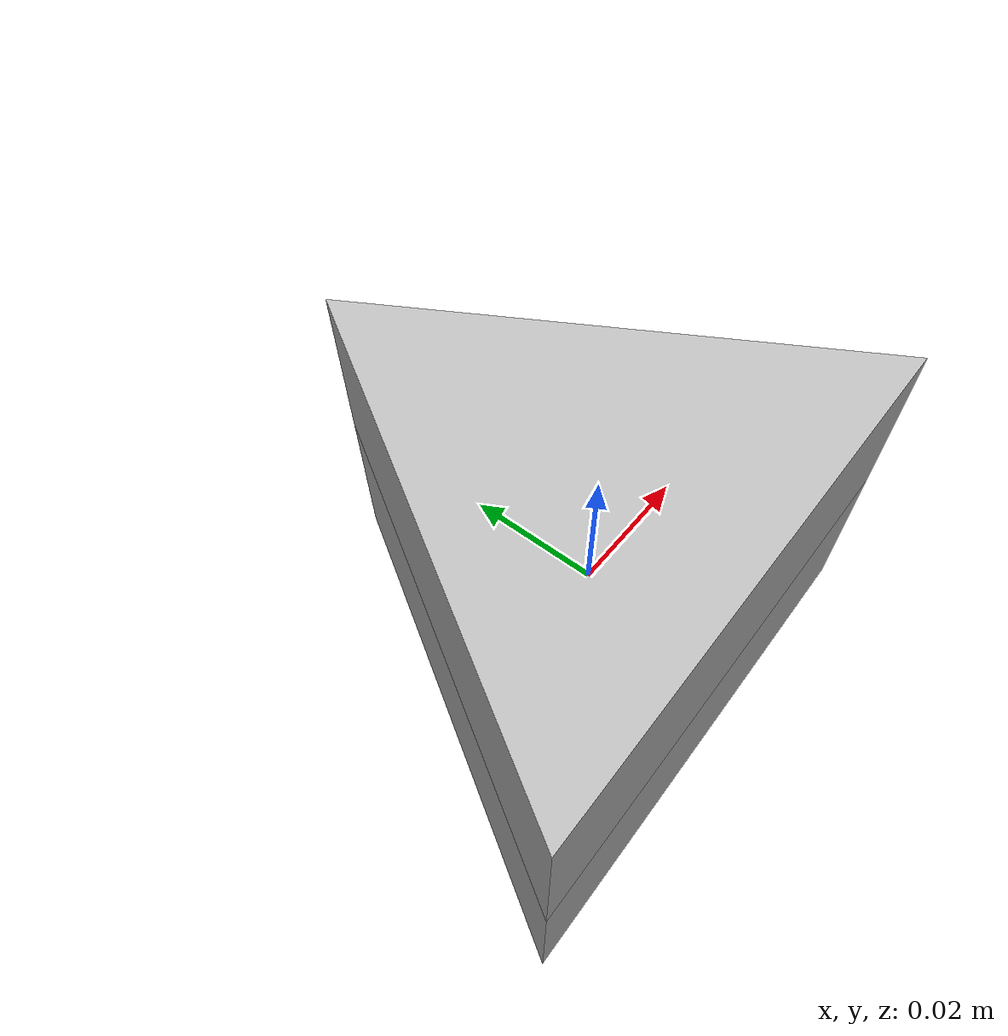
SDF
<sdf version='1.6'>
  <model name='trangle'>
    <link name='base_link'>
      <pose frame=''>0 0 0 0 -0 0</pose>
      <inertial>
        <pose frame=''>0 -0 0 0 -0 0</pose>
        <mass>0.138564</mass>
        <inertia>
          <ixx>6.58186e-05</ixx>
          <ixy>7.4776e-21</ixy>
          <ixz>1.07487e-20</ixz>
          <iyy>6.58186e-05</iyy>
          <iyz>5.2163e-21</iyz>
          <izz>7.39e-05</izz>
        </inertia>
      </inertial>
      <collision name='base_link_collision'>
        <pose frame=''>0 0 0 0 -0 0</pose>
        <geometry>
          <mesh>
            <scale>1 1 1</scale>
            <uri>model://trangle/meshes/base_link.STL</uri>
          </mesh>
        </geometry>
      </collision>
      <collision name='base_link_fixed_joint_lump__l2_collision_1'>
        <pose frame=''>0 0 0.025 0 -0 0</pose>
        <geometry>
          <mesh>
            <scale>1 1 1</scale>
            <uri>model://trangle/meshes/l2.STL</uri>
          </mesh>
        </geometry>
      </collision>
      <visual name='base_link_visual'>
        <pose frame=''>0 0 0 0 -0 0</pose>
        <geometry>
          <mesh>
            <scale>1 1 1</scale>
            <uri>model://trangle/meshes/base_link.STL</uri>
          </mesh>
        </geometry>
      </visual>
      <visual name='base_link_fixed_joint_lump__l2_visual_1'>
        <pose frame=''>0 0 0.025 0 -0 0</pose>
        <geometry>
          <mesh>
            <scale>1 1 1</scale>
            <uri>model://trangle/meshes/l2.STL</uri>
          </mesh>
        </geometry>
      </visual>
    </link>
  </model>
</sdf>
